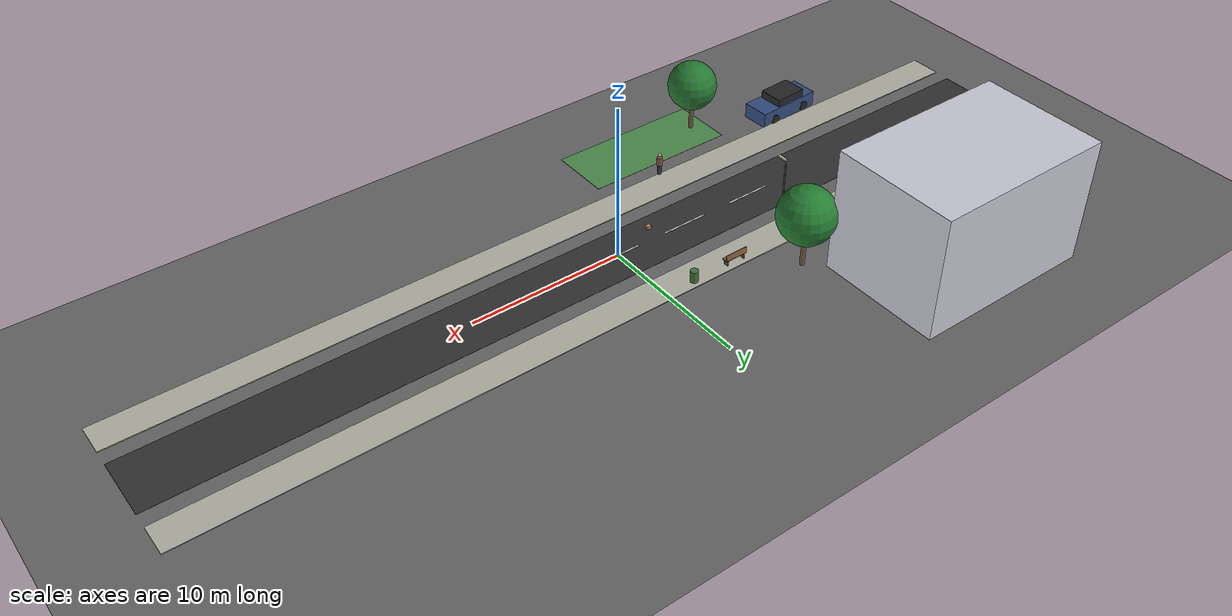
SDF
<sdf version="1.6">
 <world name="delivery_campus">
  <model name="ground_plane">
   <static>true</static>
   <link name="ground_link">
    <collision name="collision">
     <geometry><plane><normal>0 0 1</normal><size>100 100</size></plane></geometry>
     <surface><friction><ode><mu>100</mu><mu2>50</mu2></ode></friction></surface>
    </collision>
    <visual name="visual">
     <geometry><plane><normal>0 0 1</normal><size>100 100</size></plane></geometry>
     <material>
      <ambient>0.3 0.3 0.3 1</ambient>
      <diffuse>0.4 0.4 0.4 1</diffuse>
      <specular>0.1 0.1 0.1 1</specular>
     </material>
    </visual>
   </link>
  </model>
  <model name="main_road">
   <static>true</static>
   <pose>0 0 0.01 0 0 0</pose>
   <link name="road_link">
    <visual name="road_visual">
     <geometry><box><size>60 4 0.02</size></box></geometry>
     <material>
      <ambient>0.15 0.15 0.15 1</ambient>
      <diffuse>0.2 0.2 0.2 1</diffuse>
      <specular>0.05 0.05 0.05 1</specular>
     </material>
    </visual>
    <collision name="road_collision"><geometry><box><size>60 4 0.02</size></box></geometry></collision>
   </link>
  </model>
  <model name="center_line_1">
   <static>true</static>
   <pose>-10 0 0.02 0 0 0</pose>
   <link name="line_link">
    <visual name="visual">
     <geometry><box><size>3 0.1 0.01</size></box></geometry>
     <material><ambient>0.9 0.9 0.9 1</ambient><diffuse>1 1 1 1</diffuse></material>
    </visual>
   </link>
  </model>
  <model name="center_line_2">
   <static>true</static>
   <pose>-5 0 0.02 0 0 0</pose>
   <link name="line_link">
    <visual name="visual">
     <geometry><box><size>3 0.1 0.01</size></box></geometry>
     <material><ambient>0.9 0.9 0.9 1</ambient><diffuse>1 1 1 1</diffuse></material>
    </visual>
   </link>
  </model>
  <model name="center_line_3">
   <static>true</static>
   <pose>0 0 0.02 0 0 0</pose>
   <link name="line_link">
    <visual name="visual">
     <geometry><box><size>3 0.1 0.01</size></box></geometry>
     <material><ambient>0.9 0.9 0.9 1</ambient><diffuse>1 1 1 1</diffuse></material>
    </visual>
   </link>
  </model>
  <model name="sidewalk_north">
   <static>true</static>
   <pose>0 4 0.03 0 0 0</pose>
   <link name="sidewalk_link">
    <visual name="visual">
     <geometry><box><size>60 2 0.06</size></box></geometry>
     <material>
      <ambient>0.6 0.6 0.55 1</ambient>
      <diffuse>0.7 0.7 0.65 1</diffuse>
      <specular>0.1 0.1 0.1 1</specular>
     </material>
    </visual>
    <collision name="collision"><geometry><box><size>60 2 0.06</size></box></geometry></collision>
   </link>
  </model>
  <model name="sidewalk_south">
   <static>true</static>
   <pose>0 -4 0.03 0 0 0</pose>
   <link name="sidewalk_link">
    <visual name="visual">
     <geometry><box><size>60 2 0.06</size></box></geometry>
     <material>
      <ambient>0.6 0.6 0.55 1</ambient>
      <diffuse>0.7 0.7 0.65 1</diffuse>
      <specular>0.1 0.1 0.1 1</specular>
     </material>
    </visual>
    <collision name="collision"><geometry><box><size>60 2 0.06</size></box></geometry></collision>
   </link>
  </model>
  <model name="building_office">
   <static>true</static>
   <pose>-15 12 0 0 0 0</pose>
   <link name="building_link">
    <visual name="main_visual">
     <pose>0 0 4 0 0 0</pose>
     <geometry><box><size>12 8 8</size></box></geometry>
     <material>
      <ambient>0.7 0.7 0.75 1</ambient>
      <diffuse>0.8 0.8 0.85 1</diffuse>
      <specular>0.3 0.3 0.3 1</specular>
     </material>
    </visual>
    <collision name="main_collision">
     <pose>0 0 4 0 0 0</pose>
     <geometry><box><size>12 8 8</size></box></geometry>
    </collision>
    <visual name="windows_front">
     <pose>0 -4.01 4 0 0 0</pose>
     <geometry><box><size>10 0.02 6</size></box></geometry>
     <material>
      <ambient>0.2 0.3 0.4 1</ambient>
      <diffuse>0.3 0.4 0.5 1</diffuse>
      <specular>0.8 0.8 0.9 1</specular>
     </material>
    </visual>
   </link>
  </model>
  <model name="tree_1">
   <static>true</static>
   <pose>-8 7 0 0 0 0.3</pose>
   <link name="tree_link">
    <visual name="trunk">
     <pose>0 0 1.2 0 0 0</pose>
     <geometry><cylinder><radius>0.15</radius><length>2.4</length></cylinder></geometry>
     <material><ambient>0.35 0.25 0.15 1</ambient><diffuse>0.45 0.35 0.25 1</diffuse></material>
    </visual>
    <collision name="trunk_collision">
     <pose>0 0 1.2 0 0 0</pose>
     <geometry><cylinder><radius>0.15</radius><length>2.4</length></cylinder></geometry>
    </collision>
    <visual name="canopy">
     <pose>0 0 3.5 0 0 0</pose>
     <geometry><sphere><radius>1.8</radius></sphere></geometry>
     <material><ambient>0.1 0.4 0.15 1</ambient><diffuse>0.15 0.5 0.2 1</diffuse></material>
    </visual>
    <collision name="canopy_collision">
     <pose>0 0 3.5 0 0 0</pose>
     <geometry><sphere><radius>1.8</radius></sphere></geometry>
    </collision>
   </link>
  </model>
  <model name="tree_2">
   <static>true</static>
   <pose>-20 8 0 0 0 0.7</pose>
   <link name="tree_link">
    <visual name="trunk">
     <pose>0 0 1.5 0 0 0</pose>
     <geometry><cylinder><radius>0.18</radius><length>3</length></cylinder></geometry>
     <material><ambient>0.35 0.25 0.15 1</ambient><diffuse>0.45 0.35 0.25 1</diffuse></material>
    </visual>
    <collision name="trunk_collision">
     <pose>0 0 1.5 0 0 0</pose>
     <geometry><cylinder><radius>0.18</radius><length>3</length></cylinder></geometry>
    </collision>
    <visual name="canopy">
     <pose>0 0 4 0 0 0</pose>
     <geometry><sphere><radius>2.2</radius></sphere></geometry>
     <material><ambient>0.08 0.35 0.12 1</ambient><diffuse>0.12 0.45 0.18 1</diffuse></material>
    </visual>
   </link>
  </model>
  <model name="tree_4">
   <static>true</static>
   <pose>-12 -8 0 0 0 0.5</pose>
   <link name="tree_link">
    <visual name="trunk">
     <pose>0 0 1.3 0 0 0</pose>
     <geometry><cylinder><radius>0.14</radius><length>2.6</length></cylinder></geometry>
     <material><ambient>0.35 0.25 0.15 1</ambient><diffuse>0.45 0.35 0.25 1</diffuse></material>
    </visual>
    <collision name="trunk_collision">
     <pose>0 0 1.3 0 0 0</pose>
     <geometry><cylinder><radius>0.14</radius><length>2.6</length></cylinder></geometry>
    </collision>
    <visual name="canopy">
     <pose>0 0 3.2 0 0 0</pose>
     <geometry><sphere><radius>1.6</radius></sphere></geometry>
     <material><ambient>0.1 0.38 0.14 1</ambient><diffuse>0.15 0.48 0.2 1</diffuse></material>
    </visual>
   </link>
  </model>
  <model name="street_light_1">
   <static>true</static>
   <pose>-10 3 0 0 0 0</pose>
   <link name="light_link">
    <visual name="pole">
     <pose>0 0 2 0 0 0</pose>
     <geometry><cylinder><radius>0.05</radius><length>4</length></cylinder></geometry>
     <material><ambient>0.3 0.3 0.3 1</ambient><diffuse>0.4 0.4 0.4 1</diffuse></material>
    </visual>
    <collision name="pole_collision">
     <pose>0 0 2 0 0 0</pose>
     <geometry><cylinder><radius>0.05</radius><length>4</length></cylinder></geometry>
    </collision>
    <visual name="lamp">
     <pose>0 -0.3 4.2 0 0 0</pose>
     <geometry><box><size>0.15 0.6 0.1</size></box></geometry>
     <material><ambient>0.8 0.8 0.7 1</ambient><diffuse>0.9 0.9 0.8 1</diffuse></material>
    </visual>
   </link>
   <light name="lamp_light" type="spot">
    <pose>0 -0.3 4.1 0 1.57 0</pose>
    <diffuse>1 0.95 0.8 1</diffuse>
    <specular>0.5 0.5 0.4 1</specular>
    <attenuation>
     <range>15</range>
     <constant>0.5</constant>
     <linear>0.1</linear>
     <quadratic>0.01</quadratic>
    </attenuation>
    <spot><inner_angle>0.5</inner_angle><outer_angle>1.0</outer_angle><falloff>1.0</falloff></spot>
    <cast_shadows>false</cast_shadows>
   </light>
  </model>
  <model name="bench_1">
   <static>true</static>
   <pose>-5 4.5 0 0 0 0</pose>
   <link name="bench_link">
    <visual name="seat">
     <pose>0 0 0.45 0 0 0</pose>
     <geometry><box><size>1.5 0.4 0.05</size></box></geometry>
     <material><ambient>0.4 0.25 0.15 1</ambient><diffuse>0.5 0.35 0.2 1</diffuse></material>
    </visual>
    <collision name="seat_collision">
     <pose>0 0 0.45 0 0 0</pose>
     <geometry><box><size>1.5 0.4 0.05</size></box></geometry>
    </collision>
    <visual name="back">
     <pose>0 0.15 0.65 0.2 0 0</pose>
     <geometry><box><size>1.5 0.05 0.35</size></box></geometry>
     <material><ambient>0.4 0.25 0.15 1</ambient><diffuse>0.5 0.35 0.2 1</diffuse></material>
    </visual>
    <visual name="leg_1">
     <pose>-0.6 0 0.22 0 0 0</pose>
     <geometry><box><size>0.05 0.35 0.44</size></box></geometry>
     <material><ambient>0.2 0.2 0.2 1</ambient><diffuse>0.3 0.3 0.3 1</diffuse></material>
    </visual>
    <visual name="leg_2">
     <pose>0.6 0 0.22 0 0 0</pose>
     <geometry><box><size>0.05 0.35 0.44</size></box></geometry>
     <material><ambient>0.2 0.2 0.2 1</ambient><diffuse>0.3 0.3 0.3 1</diffuse></material>
    </visual>
   </link>
  </model>
  <model name="package_2">
   <pose>-3 -1 0.1 0 0 -0.2</pose>
   <link name="package_link">
    <inertial>
     <mass>1.5</mass>
     <inertia><ixx>0.008</ixx><ixy>0</ixy><ixz>0</ixz><iyy>0.008</iyy><iyz>0</iyz><izz>0.008</izz></inertia>
    </inertial>
    <visual name="visual">
     <geometry><box><size>0.3 0.25 0.2</size></box></geometry>
     <material><ambient>0.6 0.45 0.3 1</ambient><diffuse>0.7 0.55 0.4 1</diffuse></material>
    </visual>
    <collision name="collision"><geometry><box><size>0.3 0.25 0.2</size></box></geometry></collision>
   </link>
  </model>
  <model name="trash_bin">
   <static>true</static>
   <pose>-2 4.5 0 0 0 0</pose>
   <link name="bin_link">
    <visual name="visual">
     <pose>0 0 0.4 0 0 0</pose>
     <geometry><cylinder><radius>0.25</radius><length>0.8</length></cylinder></geometry>
     <material><ambient>0.2 0.35 0.2 1</ambient><diffuse>0.25 0.45 0.25 1</diffuse></material>
    </visual>
    <collision name="collision">
     <pose>0 0 0.4 0 0 0</pose>
     <geometry><cylinder><radius>0.25</radius><length>0.8</length></cylinder></geometry>
    </collision>
   </link>
  </model>
  <model name="parked_car_1">
   <static>true</static>
   <pose>-18 -6 0 0 0 0.05</pose>
   <link name="car_link">
    <visual name="body">
     <pose>0 0 0.5 0 0 0</pose>
     <geometry><box><size>4.5 1.8 1.0</size></box></geometry>
     <material>
      <ambient>0.15 0.2 0.4 1</ambient>
      <diffuse>0.2 0.3 0.5 1</diffuse>
      <specular>0.4 0.4 0.4 1</specular>
     </material>
    </visual>
    <collision name="body_collision">
     <pose>0 0 0.5 0 0 0</pose>
     <geometry><box><size>4.5 1.8 1.0</size></box></geometry>
    </collision>
    <visual name="cabin">
     <pose>-0.2 0 1.15 0 0 0</pose>
     <geometry><box><size>2.2 1.6 0.7</size></box></geometry>
     <material>
      <ambient>0.1 0.1 0.1 1</ambient>
      <diffuse>0.15 0.15 0.15 1</diffuse>
      <specular>0.6 0.6 0.6 1</specular>
     </material>
    </visual>
    <visual name="wheel_fl">
     <pose>1.3 0.9 0.3 1.57 0 0</pose>
     <geometry><cylinder><radius>0.3</radius><length>0.2</length></cylinder></geometry>
     <material><ambient>0.1 0.1 0.1 1</ambient><diffuse>0.15 0.15 0.15 1</diffuse></material>
    </visual>
    <visual name="wheel_fr">
     <pose>1.3 -0.9 0.3 1.57 0 0</pose>
     <geometry><cylinder><radius>0.3</radius><length>0.2</length></cylinder></geometry>
     <material><ambient>0.1 0.1 0.1 1</ambient><diffuse>0.15 0.15 0.15 1</diffuse></material>
    </visual>
    <visual name="wheel_rl">
     <pose>-1.3 0.9 0.3 1.57 0 0</pose>
     <geometry><cylinder><radius>0.3</radius><length>0.2</length></cylinder></geometry>
     <material><ambient>0.1 0.1 0.1 1</ambient><diffuse>0.15 0.15 0.15 1</diffuse></material>
    </visual>
    <visual name="wheel_rr">
     <pose>-1.3 -0.9 0.3 1.57 0 0</pose>
     <geometry><cylinder><radius>0.3</radius><length>0.2</length></cylinder></geometry>
     <material><ambient>0.1 0.1 0.1 1</ambient><diffuse>0.15 0.15 0.15 1</diffuse></material>
    </visual>
   </link>
  </model>
  <model name="pedestrian_2">
   <static>true</static>
   <pose>-7 -5 0 0 0 0.8</pose>
   <link name="person_link">
    <visual name="torso">
     <pose>0 0 1.0 0 0 0</pose>
     <geometry><cylinder><radius>0.18</radius><length>0.55</length></cylinder></geometry>
     <material><ambient>0.5 0.2 0.2 1</ambient><diffuse>0.6 0.3 0.3 1</diffuse></material>
    </visual>
    <visual name="head">
     <pose>0 0 1.45 0 0 0</pose>
     <geometry><sphere><radius>0.11</radius></sphere></geometry>
     <material><ambient>0.7 0.6 0.5 1</ambient><diffuse>0.8 0.7 0.6 1</diffuse></material>
    </visual>
    <visual name="legs">
     <pose>0 0 0.38 0 0 0</pose>
     <geometry><cylinder><radius>0.13</radius><length>0.76</length></cylinder></geometry>
     <material><ambient>0.15 0.15 0.2 1</ambient><diffuse>0.2 0.2 0.25 1</diffuse></material>
    </visual>
    <collision name="collision">
     <pose>0 0 0.85 0 0 0</pose>
     <geometry><cylinder><radius>0.22</radius><length>1.7</length></cylinder></geometry>
    </collision>
   </link>
  </model>
  <model name="grass_area_1">
   <static>true</static>
   <pose>-15 8 0.005 0 0 0</pose>
   <link name="grass_link">
    <visual name="visual">
     <geometry><box><size>8 4 0.01</size></box></geometry>
     <material><ambient>0.2 0.45 0.2 1</ambient><diffuse>0.3 0.55 0.3 1</diffuse></material>
    </visual>
   </link>
  </model>
  <model name="grass_area_3">
   <static>true</static>
   <pose>-8 -8 0.005 0 0 0</pose>
   <link name="grass_link">
    <visual name="visual">
     <geometry><box><size>10 4 0.01</size></box></geometry>
     <material><ambient>0.2 0.45 0.2 1</ambient><diffuse>0.3 0.55 0.3 1</diffuse></material>
    </visual>
   </link>
  </model>
 </world>
</sdf>
